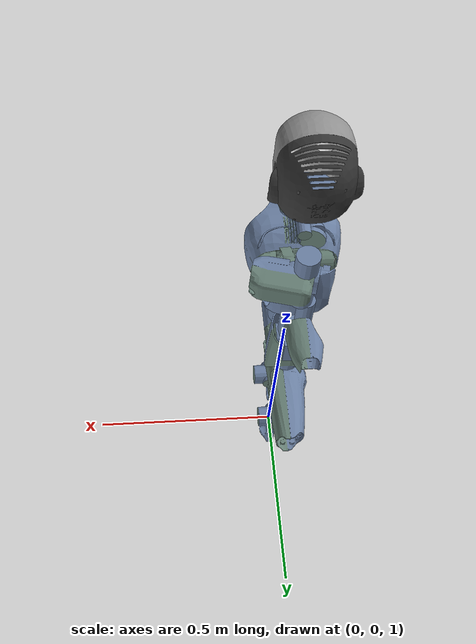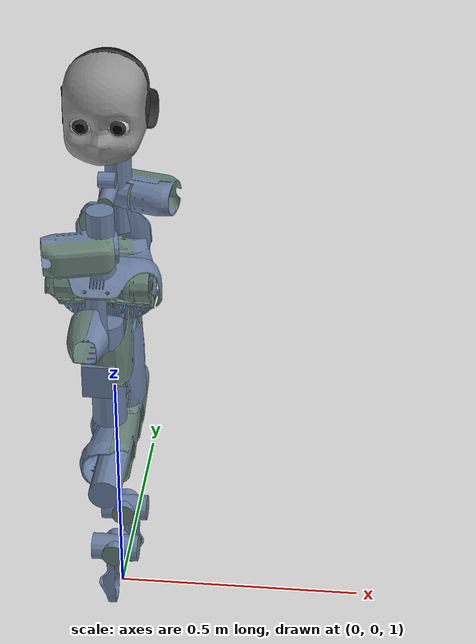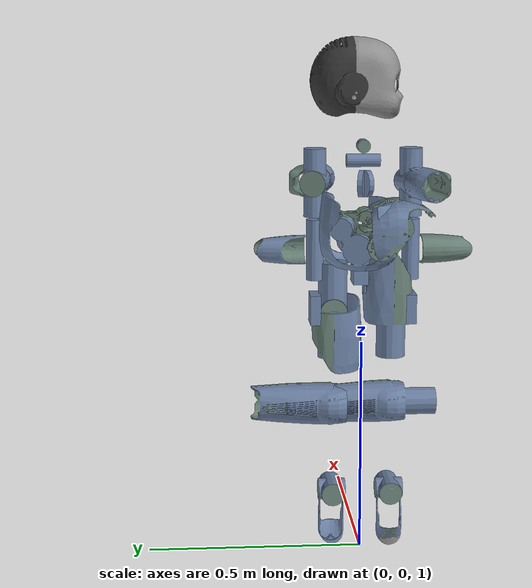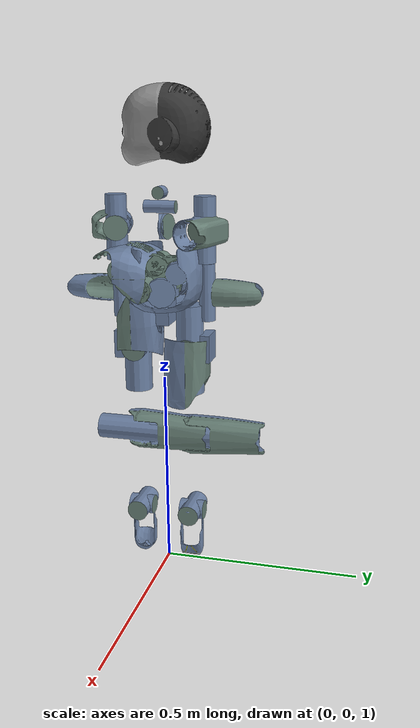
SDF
<?xml version='1.0'?>
<sdf version='1.4'>
  <model name="iCub_fixed">
    <include>
      <uri>model://icub</uri>
      <pose>0.0 0 1.0 0 0 3.14</pose>

      <plugin filename="gz-sim-joint-position-controller-system"
              name="gz::sim::systems::JointPositionController">
        <joint_name>l_hip_pitch</joint_name>
        <topic_name>/grasp_demo/l_hip_pitch</topic_name>
        <p_gain>1000</p_gain>
        <i_gain>10</i_gain>
        <d_gain>10</d_gain>
        <initial_position>0</initial_position>
      </plugin>
      <plugin filename="gz-sim-joint-position-controller-system"
              name="gz::sim::systems::JointPositionController">
        <joint_name>l_hip_roll</joint_name>
        <topic_name>/grasp_demo/l_hip_roll</topic_name>
        <p_gain>1000</p_gain>
        <i_gain>10</i_gain>
        <d_gain>10</d_gain>
        <initial_position>0</initial_position>
      </plugin>
      <plugin filename="gz-sim-joint-position-controller-system"
              name="gz::sim::systems::JointPositionController">
        <joint_name>l_hip_yaw</joint_name>
        <topic_name>/grasp_demo/l_hip_yaw</topic_name>
        <p_gain>1000</p_gain>
        <i_gain>10</i_gain>
        <d_gain>10</d_gain>
        <initial_position>0</initial_position>
      </plugin>
      <plugin filename="gz-sim-joint-position-controller-system"
              name="gz::sim::systems::JointPositionController">
        <joint_name>l_knee</joint_name>
        <topic_name>/grasp_demo/l_knee</topic_name>
        <p_gain>1000</p_gain>
        <i_gain>10</i_gain>
        <d_gain>10</d_gain>
        <initial_position>0</initial_position>
      </plugin>
      <plugin filename="gz-sim-joint-position-controller-system"
              name="gz::sim::systems::JointPositionController">
        <joint_name>l_ankle_pitch</joint_name>
        <topic_name>/grasp_demo/l_ankle_pitch</topic_name>
        <p_gain>1000</p_gain>
        <i_gain>10</i_gain>
        <d_gain>10</d_gain>
        <initial_position>0</initial_position>
      </plugin>
      <plugin filename="gz-sim-joint-position-controller-system"
              name="gz::sim::systems::JointPositionController">
        <joint_name>l_ankle_roll</joint_name>
        <topic_name>/grasp_demo/l_ankle_roll</topic_name>
        <p_gain>1000</p_gain>
        <i_gain>10</i_gain>
        <d_gain>10</d_gain>
        <initial_position>0</initial_position>
      </plugin>
      <plugin filename="gz-sim-joint-position-controller-system"
              name="gz::sim::systems::JointPositionController">
        <joint_name>r_hip_pitch</joint_name>
        <topic_name>/grasp_demo/r_hip_pitch</topic_name>
        <p_gain>1000</p_gain>
        <i_gain>10</i_gain>
        <d_gain>10</d_gain>
        <initial_position>0</initial_position>
      </plugin>
      <plugin filename="gz-sim-joint-position-controller-system"
              name="gz::sim::systems::JointPositionController">
        <joint_name>r_hip_roll</joint_name>
        <topic_name>/grasp_demo/r_hip_roll</topic_name>
        <p_gain>1000</p_gain>
        <i_gain>10</i_gain>
        <d_gain>10</d_gain>
        <initial_position>0</initial_position>
      </plugin>
      <plugin filename="gz-sim-joint-position-controller-system"
              name="gz::sim::systems::JointPositionController">
        <joint_name>r_hip_yaw</joint_name>
        <topic_name>/grasp_demo/r_hip_yaw</topic_name>
        <p_gain>1000</p_gain>
        <i_gain>10</i_gain>
        <d_gain>10</d_gain>
        <initial_position>0</initial_position>
      </plugin>
      <plugin filename="gz-sim-joint-position-controller-system"
              name="gz::sim::systems::JointPositionController">
        <joint_name>r_knee</joint_name>
        <topic_name>/grasp_demo/r_knee</topic_name>
        <p_gain>1000</p_gain>
        <i_gain>10</i_gain>
        <d_gain>10</d_gain>
        <initial_position>0</initial_position>
      </plugin>
      <plugin filename="gz-sim-joint-position-controller-system"
              name="gz::sim::systems::JointPositionController">
        <joint_name>r_ankle_pitch</joint_name>
        <topic_name>/grasp_demo/r_ankle_pitch</topic_name>
        <p_gain>1000</p_gain>
        <i_gain>10</i_gain>
        <d_gain>10</d_gain>
        <initial_position>0</initial_position>
      </plugin>
      <plugin filename="gz-sim-joint-position-controller-system"
              name="gz::sim::systems::JointPositionController">
        <joint_name>r_ankle_roll</joint_name>
        <topic_name>/grasp_demo/r_ankle_roll</topic_name>
        <p_gain>1000</p_gain>
        <i_gain>10</i_gain>
        <d_gain>10</d_gain>
        <initial_position>0</initial_position>
      </plugin>
      <plugin filename="gz-sim-joint-position-controller-system"
              name="gz::sim::systems::JointPositionController">
        <joint_name>torso_yaw</joint_name>
        <topic_name>/grasp_demo/torso_yaw</topic_name>
        <p_gain>100</p_gain>
        <i_gain>10</i_gain>
        <d_gain>10</d_gain>
        <initial_position>0</initial_position>
      </plugin>
      <plugin filename="gz-sim-joint-position-controller-system"
              name="gz::sim::systems::JointPositionController">
        <joint_name>torso_roll</joint_name>
        <topic_name>/grasp_demo/torso_roll</topic_name>
        <p_gain>100</p_gain>
        <i_gain>10</i_gain>
        <d_gain>10</d_gain>
        <initial_position>0</initial_position>
      </plugin>
      <plugin filename="gz-sim-joint-position-controller-system"
              name="gz::sim::systems::JointPositionController">
        <joint_name>torso_pitch</joint_name>
        <topic_name>/grasp_demo/torso_pitch</topic_name>
        <p_gain>100</p_gain>
        <i_gain>10</i_gain>
        <d_gain>10</d_gain>
        <initial_position>0</initial_position>
      </plugin>
      <plugin filename="gz-sim-joint-position-controller-system"
              name="gz::sim::systems::JointPositionController">
        <joint_name>neck_pitch</joint_name>
        <topic_name>/grasp_demo/neck_pitch</topic_name>
        <p_gain>50</p_gain>
        <i_gain>7</i_gain>
        <d_gain>0.1</d_gain>
        <initial_position>0</initial_position>
      </plugin>
      <plugin filename="gz-sim-joint-position-controller-system"
              name="gz::sim::systems::JointPositionController">
        <joint_name>neck_roll</joint_name>
        <topic_name>/grasp_demo/neck_roll</topic_name>
        <p_gain>50</p_gain>
        <i_gain>7</i_gain>
        <d_gain>0.1</d_gain>
        <initial_position>0</initial_position>
      </plugin>
      <plugin filename="gz-sim-joint-position-controller-system"
              name="gz::sim::systems::JointPositionController">
        <joint_name>neck_yaw</joint_name>
        <topic_name>/grasp_demo/neck_yaw</topic_name>
        <p_gain>50</p_gain>
        <i_gain>7</i_gain>
        <d_gain>0.1</d_gain>
        <initial_position>0</initial_position>
      </plugin>
      <plugin filename="gz-sim-joint-position-controller-system"
              name="gz::sim::systems::JointPositionController">
        <joint_name>l_shoulder_pitch</joint_name>
        <topic_name>/grasp_demo/l_shoulder_pitch</topic_name>
        <p_gain>100</p_gain>
        <i_gain>10</i_gain>
        <d_gain>10</d_gain>
        <initial_position>-0.52</initial_position>
      </plugin>
      <plugin filename="gz-sim-joint-position-controller-system"
              name="gz::sim::systems::JointPositionController">
        <joint_name>l_shoulder_roll</joint_name>
        <topic_name>/grasp_demo/l_shoulder_roll</topic_name>
        <p_gain>100</p_gain>
        <i_gain>10</i_gain>
        <d_gain>10</d_gain>
        <initial_position>0.52</initial_position>
      </plugin>
      <plugin filename="gz-sim-joint-position-controller-system"
              name="gz::sim::systems::JointPositionController">
        <joint_name>l_shoulder_yaw</joint_name>
        <topic_name>/grasp_demo/l_shoulder_yaw</topic_name>
        <p_gain>100</p_gain>
        <i_gain>10</i_gain>
        <d_gain>10</d_gain>
        <initial_position>0</initial_position>
      </plugin>
      <plugin filename="gz-sim-joint-position-controller-system"
              name="gz::sim::systems::JointPositionController">
        <joint_name>l_elbow</joint_name>
        <topic_name>/grasp_demo/l_elbow</topic_name>
        <p_gain>100</p_gain>
        <i_gain>10</i_gain>
        <d_gain>10</d_gain>
        <initial_position>0.785</initial_position>
      </plugin>
      <plugin filename="gz-sim-joint-position-controller-system"
              name="gz::sim::systems::JointPositionController">
        <joint_name>l_wrist_prosup</joint_name>
        <topic_name>/grasp_demo/l_wrist_prosup</topic_name>
        <p_gain>100</p_gain>
        <i_gain>10</i_gain>
        <d_gain>10</d_gain>
        <initial_position>0</initial_position>
      </plugin>
      <plugin filename="gz-sim-joint-position-controller-system"
              name="gz::sim::systems::JointPositionController">
        <joint_name>l_wrist_pitch</joint_name>
        <topic_name>/grasp_demo/l_wrist_pitch</topic_name>
        <p_gain>100</p_gain>
        <i_gain>10</i_gain>
        <d_gain>10</d_gain>
        <initial_position>0</initial_position>
      </plugin>
      <plugin filename="gz-sim-joint-position-controller-system"
              name="gz::sim::systems::JointPositionController">
        <joint_name>l_wrist_yaw</joint_name>
        <topic_name>/grasp_demo/l_wrist_yaw</topic_name>
        <p_gain>100</p_gain>
        <i_gain>10</i_gain>
        <d_gain>10</d_gain>
        <initial_position>0.698</initial_position>
      </plugin>
      <plugin filename="gz-sim-joint-position-controller-system"
              name="gz::sim::systems::JointPositionController">
        <joint_name>r_shoulder_pitch</joint_name>
        <topic_name>/grasp_demo/r_shoulder_pitch</topic_name>
        <p_gain>100</p_gain>
        <i_gain>10</i_gain>
        <d_gain>10</d_gain>
        <initial_position>-0.52</initial_position>
      </plugin>
      <plugin filename="gz-sim-joint-position-controller-system"
              name="gz::sim::systems::JointPositionController">
        <joint_name>r_shoulder_roll</joint_name>
        <topic_name>/grasp_demo/r_shoulder_roll</topic_name>
        <p_gain>100</p_gain>
        <i_gain>10</i_gain>
        <d_gain>10</d_gain>
        <initial_position>0.52</initial_position>
      </plugin>
      <plugin filename="gz-sim-joint-position-controller-system"
              name="gz::sim::systems::JointPositionController">
        <joint_name>r_shoulder_yaw</joint_name>
        <topic_name>/grasp_demo/r_shoulder_yaw</topic_name>
        <p_gain>100</p_gain>
        <i_gain>10</i_gain>
        <d_gain>10</d_gain>
        <initial_position>0</initial_position>
      </plugin>
      <plugin filename="gz-sim-joint-position-controller-system"
              name="gz::sim::systems::JointPositionController">
        <joint_name>r_elbow</joint_name>
        <topic_name>/grasp_demo/r_elbow</topic_name>
        <p_gain>100</p_gain>
        <i_gain>10</i_gain>
        <d_gain>10</d_gain>
        <initial_position>0.785</initial_position>
      </plugin>
      <plugin filename="gz-sim-joint-position-controller-system"
              name="gz::sim::systems::JointPositionController">
        <joint_name>r_wrist_prosup</joint_name>
        <topic_name>/grasp_demo/r_wrist_prosup</topic_name>
        <p_gain>100</p_gain>
        <i_gain>10</i_gain>
        <d_gain>10</d_gain>
        <initial_position>0</initial_position>
      </plugin>
      <plugin filename="gz-sim-joint-position-controller-system"
              name="gz::sim::systems::JointPositionController">
        <joint_name>r_wrist_pitch</joint_name>
        <topic_name>/grasp_demo/r_wrist_pitch</topic_name>
        <p_gain>100</p_gain>
        <i_gain>10</i_gain>
        <d_gain>10</d_gain>
        <initial_position>0</initial_position>
      </plugin>
      <plugin filename="gz-sim-joint-position-controller-system"
              name="gz::sim::systems::JointPositionController">
        <joint_name>r_wrist_yaw</joint_name>
        <topic_name>/grasp_demo/r_wrist_yaw</topic_name>
        <p_gain>100</p_gain>
        <i_gain>10</i_gain>
        <d_gain>10</d_gain>
        <initial_position>0.698</initial_position>
      </plugin>

    </include>

    <joint name="fixed to ground" type="fixed">
      <parent>world</parent>
      <child>iCub::root_link</child>
    </joint>
  </model>
</sdf>
